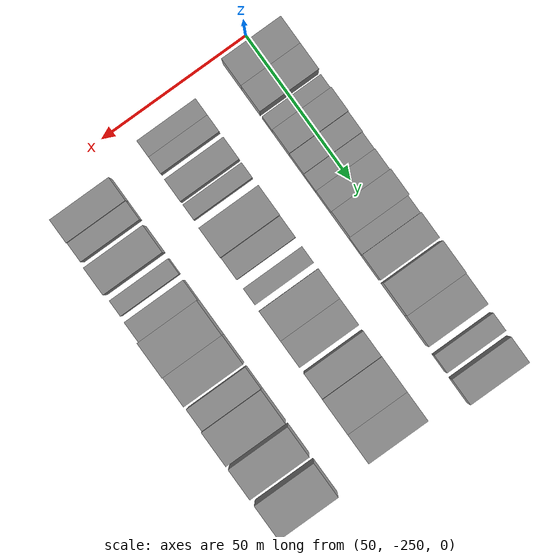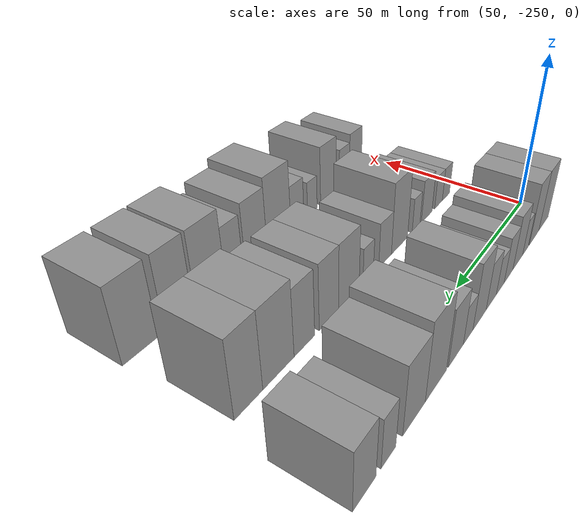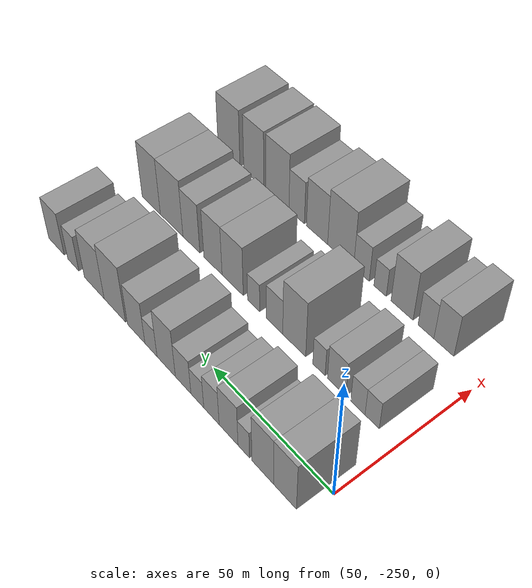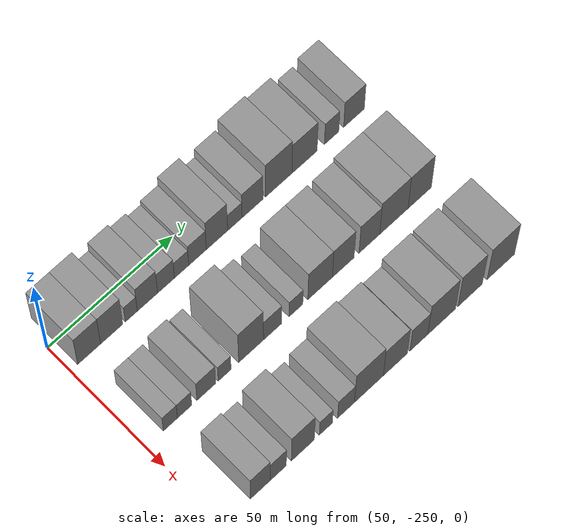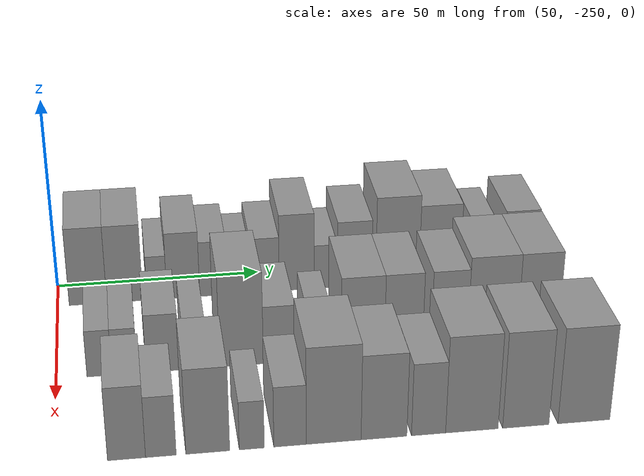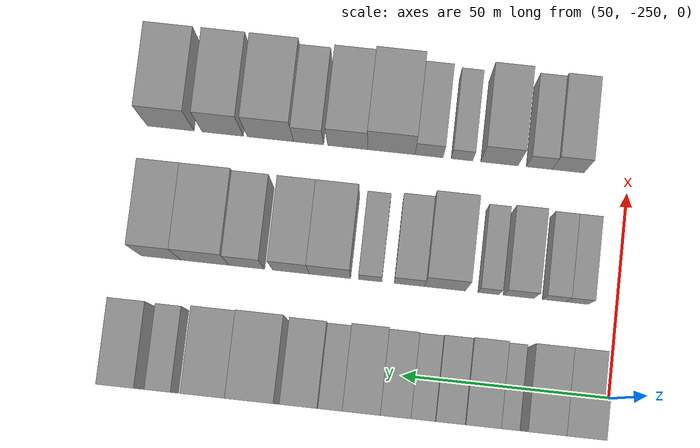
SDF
<sdf version="1.6">
 <world name="default">
  <model name="building_13">
   <static>1</static>
   <pose>50.0000 -242.6174 0 0.000000 0.000000 0.000000</pose>
   <link name="link">
    <pose>0 0 10.50 0 0 0</pose>
    <collision name="collision"><geometry><box><size>20.0000 9.0748 21.0000</size></box></geometry></collision>
    <visual name="visual">
     <cast_shadows>0</cast_shadows>
     <geometry><box><size>20.0000 9.0748 21.0000</size></box></geometry>
     <material>
      <script>
       <uri>model://grey_wall/materials/scripts</uri>
       <uri>model://grey_wall/materials/textures</uri>
       <name>vrc/grey_wall</name>
      </script>
     </material>
    </visual>
   </link>
  </model>
  <model name="building_14">
   <static>1</static>
   <pose>50.0000 -233.6881 0 0.000000 0.000000 0.000000</pose>
   <link name="link">
    <pose>0 0 10.50 0 0 0</pose>
    <collision name="collision"><geometry><box><size>20.0000 8.7838 21.0000</size></box></geometry></collision>
    <visual name="visual">
     <cast_shadows>0</cast_shadows>
     <geometry><box><size>20.0000 8.7838 21.0000</size></box></geometry>
     <material>
      <script>
       <uri>model://grey_wall/materials/scripts</uri>
       <uri>model://grey_wall/materials/textures</uri>
       <name>vrc/grey_wall</name>
      </script>
     </material>
    </visual>
   </link>
  </model>
  <model name="building_15">
   <static>1</static>
   <pose>50.0000 -225.8826 0 0.000000 0.000000 0.000000</pose>
   <link name="link">
    <pose>0 0 6.00 0 0 0</pose>
    <collision name="collision"><geometry><box><size>20.0000 4.8271 12.0000</size></box></geometry></collision>
    <visual name="visual">
     <cast_shadows>0</cast_shadows>
     <geometry><box><size>20.0000 4.8271 12.0000</size></box></geometry>
     <material>
      <script>
       <uri>model://grey_wall/materials/scripts</uri>
       <uri>model://grey_wall/materials/textures</uri>
       <name>vrc/grey_wall</name>
      </script>
     </material>
    </visual>
   </link>
  </model>
  <model name="building_16">
   <static>1</static>
   <pose>50.0000 -219.4341 0 0.000000 0.000000 0.000000</pose>
   <link name="link">
    <pose>0 0 9.00 0 0 0</pose>
    <collision name="collision"><geometry><box><size>20.0000 8.0699 18.0000</size></box></geometry></collision>
    <visual name="visual">
     <cast_shadows>0</cast_shadows>
     <geometry><box><size>20.0000 8.0699 18.0000</size></box></geometry>
     <material>
      <script>
       <uri>model://grey_wall/materials/scripts</uri>
       <uri>model://grey_wall/materials/textures</uri>
       <name>vrc/grey_wall</name>
      </script>
     </material>
    </visual>
   </link>
  </model>
  <model name="building_17">
   <static>1</static>
   <pose>50.0000 -212.0149 0 0.000000 0.000000 0.000000</pose>
   <link name="link">
    <pose>0 0 7.50 0 0 0</pose>
    <collision name="collision"><geometry><box><size>20.0000 6.7684 15.0000</size></box></geometry></collision>
    <visual name="visual">
     <cast_shadows>0</cast_shadows>
     <geometry><box><size>20.0000 6.7684 15.0000</size></box></geometry>
     <material>
      <script>
       <uri>model://grey_wall/materials/scripts</uri>
       <uri>model://grey_wall/materials/textures</uri>
       <name>vrc/grey_wall</name>
      </script>
     </material>
    </visual>
   </link>
  </model>
  <model name="building_18">
   <static>1</static>
   <pose>50.0000 -205.7448 0 0.000000 0.000000 0.000000</pose>
   <link name="link">
    <pose>0 0 6.00 0 0 0</pose>
    <collision name="collision"><geometry><box><size>20.0000 5.7718 12.0000</size></box></geometry></collision>
    <visual name="visual">
     <cast_shadows>0</cast_shadows>
     <geometry><box><size>20.0000 5.7718 12.0000</size></box></geometry>
     <material>
      <script>
       <uri>model://grey_wall/materials/scripts</uri>
       <uri>model://grey_wall/materials/textures</uri>
       <name>vrc/grey_wall</name>
      </script>
     </material>
    </visual>
   </link>
  </model>
  <model name="building_19">
   <static>1</static>
   <pose>50.0000 -199.2922 0 0.000000 0.000000 0.000000</pose>
   <link name="link">
    <pose>0 0 7.50 0 0 0</pose>
    <collision name="collision"><geometry><box><size>20.0000 7.1336 15.0000</size></box></geometry></collision>
    <visual name="visual">
     <cast_shadows>0</cast_shadows>
     <geometry><box><size>20.0000 7.1336 15.0000</size></box></geometry>
     <material>
      <script>
       <uri>model://grey_wall/materials/scripts</uri>
       <uri>model://grey_wall/materials/textures</uri>
       <name>vrc/grey_wall</name>
      </script>
     </material>
    </visual>
   </link>
  </model>
  <model name="building_20">
   <static>1</static>
   <pose>50.0000 -191.3891 0 0.000000 0.000000 0.000000</pose>
   <link name="link">
    <pose>0 0 10.50 0 0 0</pose>
    <collision name="collision"><geometry><box><size>20.0000 8.6725 21.0000</size></box></geometry></collision>
    <visual name="visual">
     <cast_shadows>0</cast_shadows>
     <geometry><box><size>20.0000 8.6725 21.0000</size></box></geometry>
     <material>
      <script>
       <uri>model://grey_wall/materials/scripts</uri>
       <uri>model://grey_wall/materials/textures</uri>
       <name>vrc/grey_wall</name>
      </script>
     </material>
    </visual>
   </link>
  </model>
  <model name="building_21">
   <static>1</static>
   <pose>50.0000 -184.1292 0 0.000000 0.000000 0.000000</pose>
   <link name="link">
    <pose>0 0 6.00 0 0 0</pose>
    <collision name="collision"><geometry><box><size>20.0000 5.8472 12.0000</size></box></geometry></collision>
    <visual name="visual">
     <cast_shadows>0</cast_shadows>
     <geometry><box><size>20.0000 5.8472 12.0000</size></box></geometry>
     <material>
      <script>
       <uri>model://grey_wall/materials/scripts</uri>
       <uri>model://grey_wall/materials/textures</uri>
       <name>vrc/grey_wall</name>
      </script>
     </material>
    </visual>
   </link>
  </model>
  <model name="building_22">
   <static>1</static>
   <pose>50.0000 -176.8922 0 0.000000 0.000000 0.000000</pose>
   <link name="link">
    <pose>0 0 9.00 0 0 0</pose>
    <collision name="collision"><geometry><box><size>20.0000 8.6268 18.0000</size></box></geometry></collision>
    <visual name="visual">
     <cast_shadows>0</cast_shadows>
     <geometry><box><size>20.0000 8.6268 18.0000</size></box></geometry>
     <material>
      <script>
       <uri>model://grey_wall/materials/scripts</uri>
       <uri>model://grey_wall/materials/textures</uri>
       <name>vrc/grey_wall</name>
      </script>
     </material>
    </visual>
   </link>
  </model>
  <model name="building_23">
   <static>1</static>
   <pose>50.0000 -166.0902 0 0.000000 0.000000 0.000000</pose>
   <link name="link">
    <pose>0 0 12.00 0 0 0</pose>
    <collision name="collision"><geometry><box><size>20.0000 10.9774 24.0000</size></box></geometry></collision>
    <visual name="visual">
     <cast_shadows>0</cast_shadows>
     <geometry><box><size>20.0000 10.9774 24.0000</size></box></geometry>
     <material>
      <script>
       <uri>model://grey_wall/materials/scripts</uri>
       <uri>model://grey_wall/materials/textures</uri>
       <name>vrc/grey_wall</name>
      </script>
     </material>
    </visual>
   </link>
  </model>
  <model name="building_24">
   <static>1</static>
   <pose>50.0000 -155.3657 0 0.000000 0.000000 0.000000</pose>
   <link name="link">
    <pose>0 0 10.50 0 0 0</pose>
    <collision name="collision"><geometry><box><size>20.0000 10.4715 21.0000</size></box></geometry></collision>
    <visual name="visual">
     <cast_shadows>0</cast_shadows>
     <geometry><box><size>20.0000 10.4715 21.0000</size></box></geometry>
     <material>
      <script>
       <uri>model://grey_wall/materials/scripts</uri>
       <uri>model://grey_wall/materials/textures</uri>
       <name>vrc/grey_wall</name>
      </script>
     </material>
    </visual>
   </link>
  </model>
  <model name="building_25">
   <static>1</static>
   <pose>50.0000 -144.1026 0 0.000000 0.000000 0.000000</pose>
   <link name="link">
    <pose>0 0 7.50 0 0 0</pose>
    <collision name="collision"><geometry><box><size>20.0000 6.0546 15.0000</size></box></geometry></collision>
    <visual name="visual">
     <cast_shadows>0</cast_shadows>
     <geometry><box><size>20.0000 6.0546 15.0000</size></box></geometry>
     <material>
      <script>
       <uri>model://grey_wall/materials/scripts</uri>
       <uri>model://grey_wall/materials/textures</uri>
       <name>vrc/grey_wall</name>
      </script>
     </material>
    </visual>
   </link>
  </model>
  <model name="building_26">
   <static>1</static>
   <pose>50.0000 -134.7185 0 0.000000 0.000000 0.000000</pose>
   <link name="link">
    <pose>0 0 9.00 0 0 0</pose>
    <collision name="collision"><geometry><box><size>20.0000 8.7136 18.0000</size></box></geometry></collision>
    <visual name="visual">
     <cast_shadows>0</cast_shadows>
     <geometry><box><size>20.0000 8.7136 18.0000</size></box></geometry>
     <material>
      <script>
       <uri>model://grey_wall/materials/scripts</uri>
       <uri>model://grey_wall/materials/textures</uri>
       <name>vrc/grey_wall</name>
      </script>
     </material>
    </visual>
   </link>
  </model>
  <model name="building_92">
   <static>1</static>
   <pose>82.0000 -240.3212 0 0.000000 0.000000 0.000000</pose>
   <link name="link">
    <pose>0 0 6.00 0 0 0</pose>
    <collision name="collision"><geometry><box><size>20.0000 5.5577 12.0000</size></box></geometry></collision>
    <visual name="visual">
     <cast_shadows>0</cast_shadows>
     <geometry><box><size>20.0000 5.5577 12.0000</size></box></geometry>
     <material>
      <script>
       <uri>model://grey_wall/materials/scripts</uri>
       <uri>model://grey_wall/materials/textures</uri>
       <name>vrc/grey_wall</name>
      </script>
     </material>
    </visual>
   </link>
  </model>
  <model name="building_93">
   <static>1</static>
   <pose>82.0000 -234.6851 0 0.000000 0.000000 0.000000</pose>
   <link name="link">
    <pose>0 0 6.00 0 0 0</pose>
    <collision name="collision"><geometry><box><size>20.0000 5.7144 12.0000</size></box></geometry></collision>
    <visual name="visual">
     <cast_shadows>0</cast_shadows>
     <geometry><box><size>20.0000 5.7144 12.0000</size></box></geometry>
     <material>
      <script>
       <uri>model://grey_wall/materials/scripts</uri>
       <uri>model://grey_wall/materials/textures</uri>
       <name>vrc/grey_wall</name>
      </script>
     </material>
    </visual>
   </link>
  </model>
  <model name="building_94">
   <static>1</static>
   <pose>82.0000 -226.0825 0 0.000000 0.000000 0.000000</pose>
   <link name="link">
    <pose>0 0 7.50 0 0 0</pose>
    <collision name="collision"><geometry><box><size>20.0000 7.4907 15.0000</size></box></geometry></collision>
    <visual name="visual">
     <cast_shadows>0</cast_shadows>
     <geometry><box><size>20.0000 7.4907 15.0000</size></box></geometry>
     <material>
      <script>
       <uri>model://grey_wall/materials/scripts</uri>
       <uri>model://grey_wall/materials/textures</uri>
       <name>vrc/grey_wall</name>
      </script>
     </material>
    </visual>
   </link>
  </model>
  <model name="building_95">
   <static>1</static>
   <pose>82.0000 -218.7487 0 0.000000 0.000000 0.000000</pose>
   <link name="link">
    <pose>0 0 6.00 0 0 0</pose>
    <collision name="collision"><geometry><box><size>20.0000 5.1771 12.0000</size></box></geometry></collision>
    <visual name="visual">
     <cast_shadows>0</cast_shadows>
     <geometry><box><size>20.0000 5.1771 12.0000</size></box></geometry>
     <material>
      <script>
       <uri>model://grey_wall/materials/scripts</uri>
       <uri>model://grey_wall/materials/textures</uri>
       <name>vrc/grey_wall</name>
      </script>
     </material>
    </visual>
   </link>
  </model>
  <model name="building_96">
   <static>1</static>
   <pose>82.0000 -208.1568 0 0.000000 0.000000 0.000000</pose>
   <link name="link">
    <pose>0 0 12.00 0 0 0</pose>
    <collision name="collision"><geometry><box><size>20.0000 10.0066 24.0000</size></box></geometry></collision>
    <visual name="visual">
     <cast_shadows>0</cast_shadows>
     <geometry><box><size>20.0000 10.0066 24.0000</size></box></geometry>
     <material>
      <script>
       <uri>model://grey_wall/materials/scripts</uri>
       <uri>model://grey_wall/materials/textures</uri>
       <name>vrc/grey_wall</name>
      </script>
     </material>
    </visual>
   </link>
  </model>
  <model name="building_97">
   <static>1</static>
   <pose>82.0000 -199.4689 0 0.000000 0.000000 0.000000</pose>
   <link name="link">
    <pose>0 0 7.50 0 0 0</pose>
    <collision name="collision"><geometry><box><size>20.0000 7.3693 15.0000</size></box></geometry></collision>
    <visual name="visual">
     <cast_shadows>0</cast_shadows>
     <geometry><box><size>20.0000 7.3693 15.0000</size></box></geometry>
     <material>
      <script>
       <uri>model://grey_wall/materials/scripts</uri>
       <uri>model://grey_wall/materials/textures</uri>
       <name>vrc/grey_wall</name>
      </script>
     </material>
    </visual>
   </link>
  </model>
  <model name="building_98">
   <static>1</static>
   <pose>82.0000 -189.9820 0 0.000000 0.000000 0.000000</pose>
   <link name="link">
    <pose>0 0 6.00 0 0 0</pose>
    <collision name="collision"><geometry><box><size>20.0000 5.6044 12.0000</size></box></geometry></collision>
    <visual name="visual">
     <cast_shadows>0</cast_shadows>
     <geometry><box><size>20.0000 5.6044 12.0000</size></box></geometry>
     <material>
      <script>
       <uri>model://grey_wall/materials/scripts</uri>
       <uri>model://grey_wall/materials/textures</uri>
       <name>vrc/grey_wall</name>
      </script>
     </material>
    </visual>
   </link>
  </model>
  <model name="building_99">
   <static>1</static>
   <pose>82.0000 -180.1381 0 0.000000 0.000000 0.000000</pose>
   <link name="link">
    <pose>0 0 10.50 0 0 0</pose>
    <collision name="collision"><geometry><box><size>20.0000 10.0836 21.0000</size></box></geometry></collision>
    <visual name="visual">
     <cast_shadows>0</cast_shadows>
     <geometry><box><size>20.0000 10.0836 21.0000</size></box></geometry>
     <material>
      <script>
       <uri>model://grey_wall/materials/scripts</uri>
       <uri>model://grey_wall/materials/textures</uri>
       <name>vrc/grey_wall</name>
      </script>
     </material>
    </visual>
   </link>
  </model>
  <model name="building_100">
   <static>1</static>
   <pose>82.0000 -170.6336 0 0.000000 0.000000 0.000000</pose>
   <link name="link">
    <pose>0 0 10.50 0 0 0</pose>
    <collision name="collision"><geometry><box><size>20.0000 8.9254 21.0000</size></box></geometry></collision>
    <visual name="visual">
     <cast_shadows>0</cast_shadows>
     <geometry><box><size>20.0000 8.9254 21.0000</size></box></geometry>
     <material>
      <script>
       <uri>model://grey_wall/materials/scripts</uri>
       <uri>model://grey_wall/materials/textures</uri>
       <name>vrc/grey_wall</name>
      </script>
     </material>
    </visual>
   </link>
  </model>
  <model name="building_101">
   <static>1</static>
   <pose>82.0000 -159.8894 0 0.000000 0.000000 0.000000</pose>
   <link name="link">
    <pose>0 0 10.50 0 0 0</pose>
    <collision name="collision"><geometry><box><size>20.0000 8.5630 21.0000</size></box></geometry></collision>
    <visual name="visual">
     <cast_shadows>0</cast_shadows>
     <geometry><box><size>20.0000 8.5630 21.0000</size></box></geometry>
     <material>
      <script>
       <uri>model://grey_wall/materials/scripts</uri>
       <uri>model://grey_wall/materials/textures</uri>
       <name>vrc/grey_wall</name>
      </script>
     </material>
    </visual>
   </link>
  </model>
  <model name="building_102">
   <static>1</static>
   <pose>82.0000 -149.6990 0 0.000000 0.000000 0.000000</pose>
   <link name="link">
    <pose>0 0 12.00 0 0 0</pose>
    <collision name="collision"><geometry><box><size>20.0000 11.8178 24.0000</size></box></geometry></collision>
    <visual name="visual">
     <cast_shadows>0</cast_shadows>
     <geometry><box><size>20.0000 11.8178 24.0000</size></box></geometry>
     <material>
      <script>
       <uri>model://grey_wall/materials/scripts</uri>
       <uri>model://grey_wall/materials/textures</uri>
       <name>vrc/grey_wall</name>
      </script>
     </material>
    </visual>
   </link>
  </model>
  <model name="building_103">
   <static>1</static>
   <pose>82.0000 -138.8889 0 0.000000 0.000000 0.000000</pose>
   <link name="link">
    <pose>0 0 12.00 0 0 0</pose>
    <collision name="collision"><geometry><box><size>20.0000 9.8024 24.0000</size></box></geometry></collision>
    <visual name="visual">
     <cast_shadows>0</cast_shadows>
     <geometry><box><size>20.0000 9.8024 24.0000</size></box></geometry>
     <material>
      <script>
       <uri>model://grey_wall/materials/scripts</uri>
       <uri>model://grey_wall/materials/textures</uri>
       <name>vrc/grey_wall</name>
      </script>
     </material>
    </visual>
   </link>
  </model>
  <model name="building_166">
   <static>1</static>
   <pose>114.0000 -235.1669 0 0.000000 0.000000 0.000000</pose>
   <link name="link">
    <pose>0 0 9.00 0 0 0</pose>
    <collision name="collision"><geometry><box><size>20.0000 7.8623 18.0000</size></box></geometry></collision>
    <visual name="visual">
     <cast_shadows>0</cast_shadows>
     <geometry><box><size>20.0000 7.8623 18.0000</size></box></geometry>
     <material>
      <script>
       <uri>model://grey_wall/materials/scripts</uri>
       <uri>model://grey_wall/materials/textures</uri>
       <name>vrc/grey_wall</name>
      </script>
     </material>
    </visual>
   </link>
  </model>
  <model name="building_167">
   <static>1</static>
   <pose>114.0000 -228.0461 0 0.000000 0.000000 0.000000</pose>
   <link name="link">
    <pose>0 0 7.50 0 0 0</pose>
    <collision name="collision"><geometry><box><size>20.0000 6.3794 15.0000</size></box></geometry></collision>
    <visual name="visual">
     <cast_shadows>0</cast_shadows>
     <geometry><box><size>20.0000 6.3794 15.0000</size></box></geometry>
     <material>
      <script>
       <uri>model://grey_wall/materials/scripts</uri>
       <uri>model://grey_wall/materials/textures</uri>
       <name>vrc/grey_wall</name>
      </script>
     </material>
    </visual>
   </link>
  </model>
  <model name="building_168">
   <static>1</static>
   <pose>114.0000 -218.2627 0 0.000000 0.000000 0.000000</pose>
   <link name="link">
    <pose>0 0 10.50 0 0 0</pose>
    <collision name="collision"><geometry><box><size>20.0000 9.1876 21.0000</size></box></geometry></collision>
    <visual name="visual">
     <cast_shadows>0</cast_shadows>
     <geometry><box><size>20.0000 9.1876 21.0000</size></box></geometry>
     <material>
      <script>
       <uri>model://grey_wall/materials/scripts</uri>
       <uri>model://grey_wall/materials/textures</uri>
       <name>vrc/grey_wall</name>
      </script>
     </material>
    </visual>
   </link>
  </model>
  <model name="building_169">
   <static>1</static>
   <pose>114.0000 -209.0254 0 0.000000 0.000000 0.000000</pose>
   <link name="link">
    <pose>0 0 6.00 0 0 0</pose>
    <collision name="collision"><geometry><box><size>20.0000 5.2869 12.0000</size></box></geometry></collision>
    <visual name="visual">
     <cast_shadows>0</cast_shadows>
     <geometry><box><size>20.0000 5.2869 12.0000</size></box></geometry>
     <material>
      <script>
       <uri>model://grey_wall/materials/scripts</uri>
       <uri>model://grey_wall/materials/textures</uri>
       <name>vrc/grey_wall</name>
      </script>
     </material>
    </visual>
   </link>
  </model>
  <model name="building_170">
   <static>1</static>
   <pose>114.0000 -200.9552 0 0.000000 0.000000 0.000000</pose>
   <link name="link">
    <pose>0 0 7.50 0 0 0</pose>
    <collision name="collision"><geometry><box><size>20.0000 6.8534 15.0000</size></box></geometry></collision>
    <visual name="visual">
     <cast_shadows>0</cast_shadows>
     <geometry><box><size>20.0000 6.8534 15.0000</size></box></geometry>
     <material>
      <script>
       <uri>model://grey_wall/materials/scripts</uri>
       <uri>model://grey_wall/materials/textures</uri>
       <name>vrc/grey_wall</name>
      </script>
     </material>
    </visual>
   </link>
  </model>
  <model name="building_171">
   <static>1</static>
   <pose>114.0000 -191.6706 0 0.000000 0.000000 0.000000</pose>
   <link name="link">
    <pose>0 0 12.00 0 0 0</pose>
    <collision name="collision"><geometry><box><size>20.0000 11.7159 24.0000</size></box></geometry></collision>
    <visual name="visual">
     <cast_shadows>0</cast_shadows>
     <geometry><box><size>20.0000 11.7159 24.0000</size></box></geometry>
     <material>
      <script>
       <uri>model://grey_wall/materials/scripts</uri>
       <uri>model://grey_wall/materials/textures</uri>
       <name>vrc/grey_wall</name>
      </script>
     </material>
    </visual>
   </link>
  </model>
  <model name="building_172">
   <static>1</static>
   <pose>114.0000 -180.8854 0 0.000000 0.000000 0.000000</pose>
   <link name="link">
    <pose>0 0 10.50 0 0 0</pose>
    <collision name="collision"><geometry><box><size>20.0000 9.8545 21.0000</size></box></geometry></collision>
    <visual name="visual">
     <cast_shadows>0</cast_shadows>
     <geometry><box><size>20.0000 9.8545 21.0000</size></box></geometry>
     <material>
      <script>
       <uri>model://grey_wall/materials/scripts</uri>
       <uri>model://grey_wall/materials/textures</uri>
       <name>vrc/grey_wall</name>
      </script>
     </material>
    </visual>
   </link>
  </model>
  <model name="building_173">
   <static>1</static>
   <pose>114.0000 -171.2642 0 0.000000 0.000000 0.000000</pose>
   <link name="link">
    <pose>0 0 9.00 0 0 0</pose>
    <collision name="collision"><geometry><box><size>20.0000 7.3879 18.0000</size></box></geometry></collision>
    <visual name="visual">
     <cast_shadows>0</cast_shadows>
     <geometry><box><size>20.0000 7.3879 18.0000</size></box></geometry>
     <material>
      <script>
       <uri>model://grey_wall/materials/scripts</uri>
       <uri>model://grey_wall/materials/textures</uri>
       <name>vrc/grey_wall</name>
      </script>
     </material>
    </visual>
   </link>
  </model>
  <model name="building_174">
   <static>1</static>
   <pose>114.0000 -161.8448 0 0.000000 0.000000 0.000000</pose>
   <link name="link">
    <pose>0 0 12.00 0 0 0</pose>
    <collision name="collision"><geometry><box><size>20.0000 11.4509 24.0000</size></box></geometry></collision>
    <visual name="visual">
     <cast_shadows>0</cast_shadows>
     <geometry><box><size>20.0000 11.4509 24.0000</size></box></geometry>
     <material>
      <script>
       <uri>model://grey_wall/materials/scripts</uri>
       <uri>model://grey_wall/materials/textures</uri>
       <name>vrc/grey_wall</name>
      </script>
     </material>
    </visual>
   </link>
  </model>
  <model name="building_175">
   <static>1</static>
   <pose>114.0000 -150.0311 0 0.000000 0.000000 0.000000</pose>
   <link name="link">
    <pose>0 0 12.00 0 0 0</pose>
    <collision name="collision"><geometry><box><size>20.0000 10.1765 24.0000</size></box></geometry></collision>
    <visual name="visual">
     <cast_shadows>0</cast_shadows>
     <geometry><box><size>20.0000 10.1765 24.0000</size></box></geometry>
     <material>
      <script>
       <uri>model://grey_wall/materials/scripts</uri>
       <uri>model://grey_wall/materials/textures</uri>
       <name>vrc/grey_wall</name>
      </script>
     </material>
    </visual>
   </link>
  </model>
  <model name="building_176">
   <static>1</static>
   <pose>114.0000 -137.1858 0 0.000000 0.000000 0.000000</pose>
   <link name="link">
    <pose>0 0 12.00 0 0 0</pose>
    <collision name="collision"><geometry><box><size>20.0000 11.5141 24.0000</size></box></geometry></collision>
    <visual name="visual">
     <cast_shadows>0</cast_shadows>
     <geometry><box><size>20.0000 11.5141 24.0000</size></box></geometry>
     <material>
      <script>
       <uri>model://grey_wall/materials/scripts</uri>
       <uri>model://grey_wall/materials/textures</uri>
       <name>vrc/grey_wall</name>
      </script>
     </material>
    </visual>
   </link>
  </model>
 </world>
</sdf>
